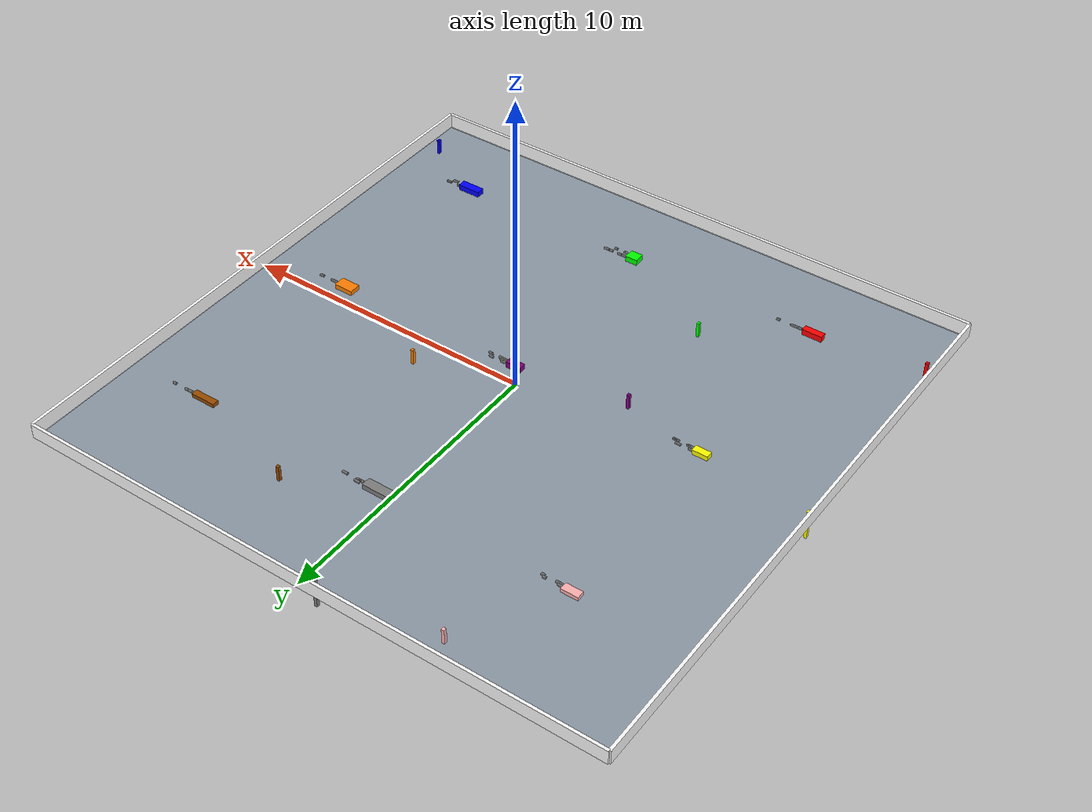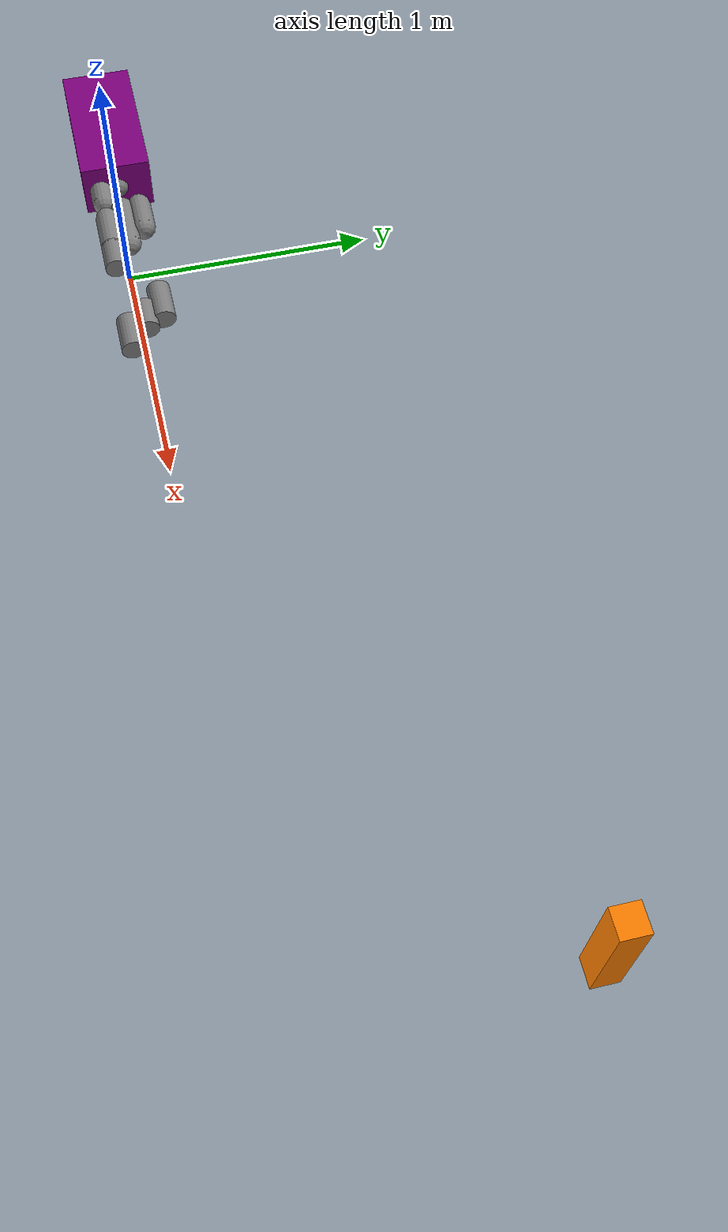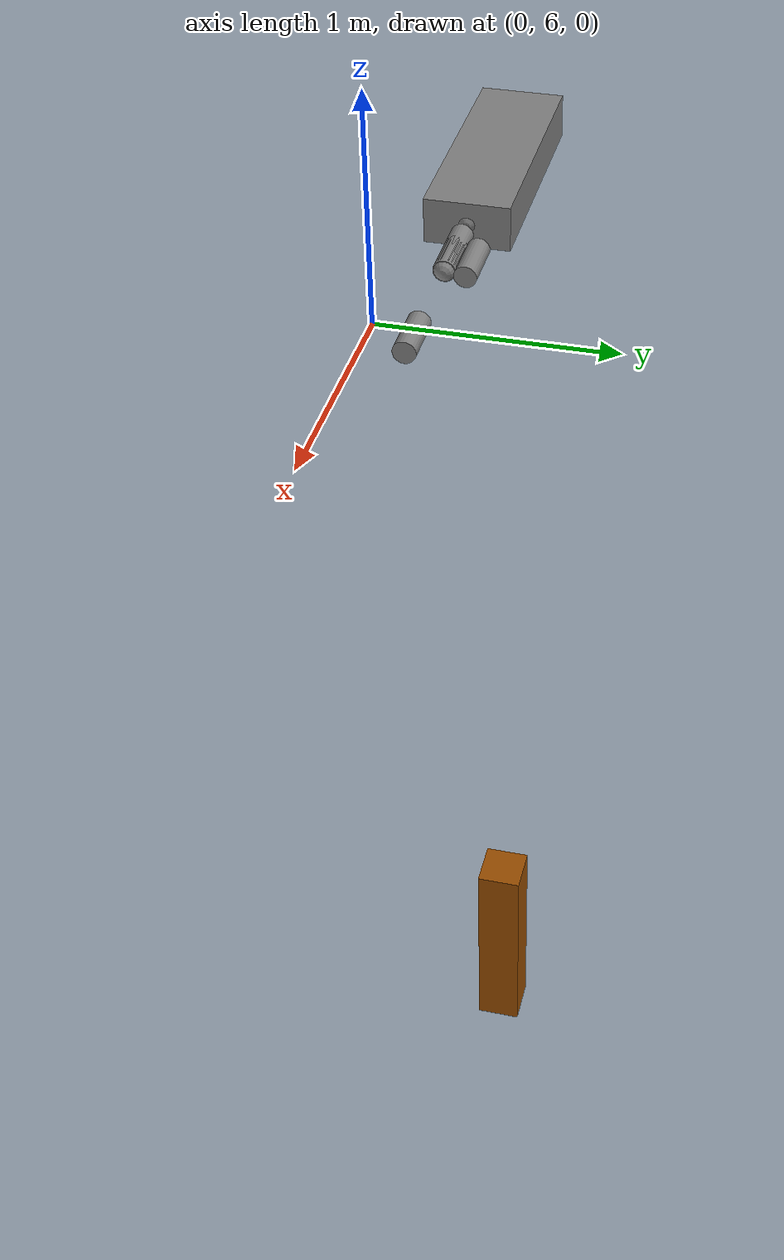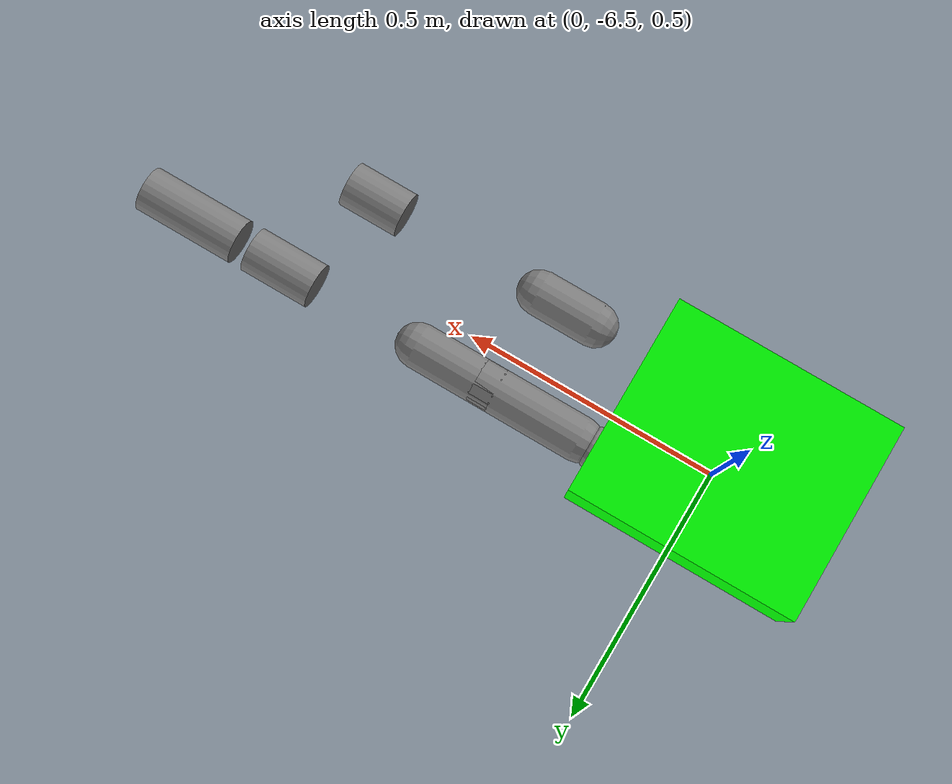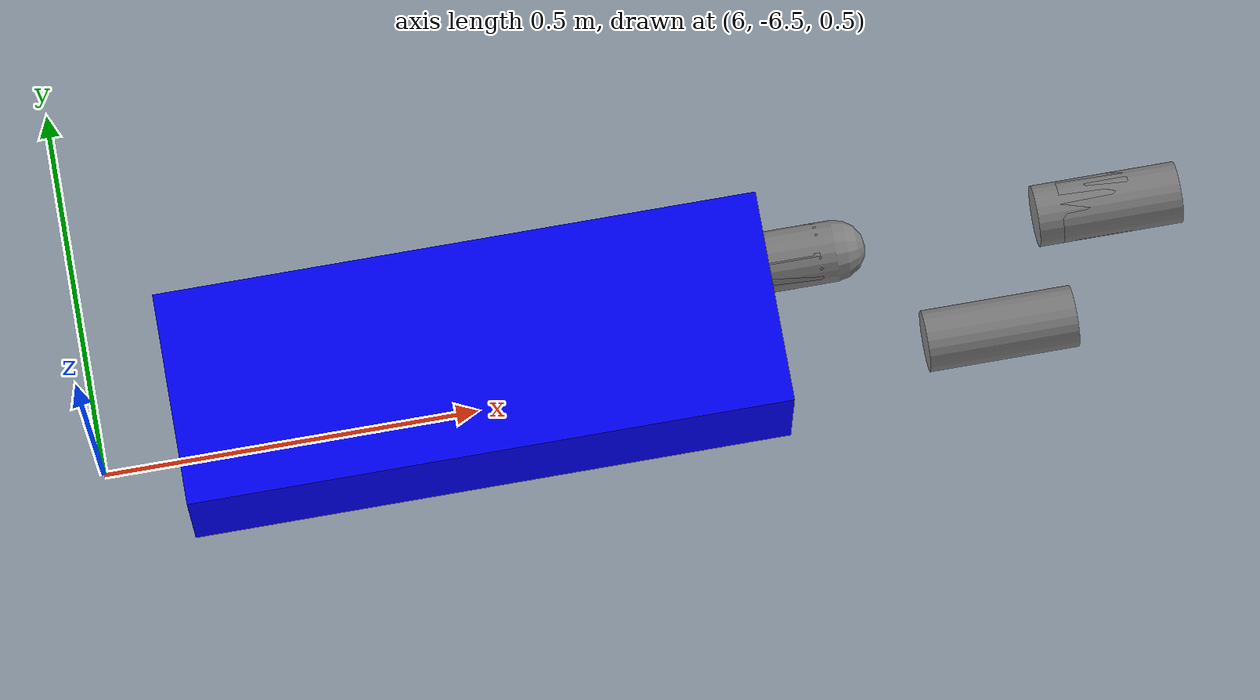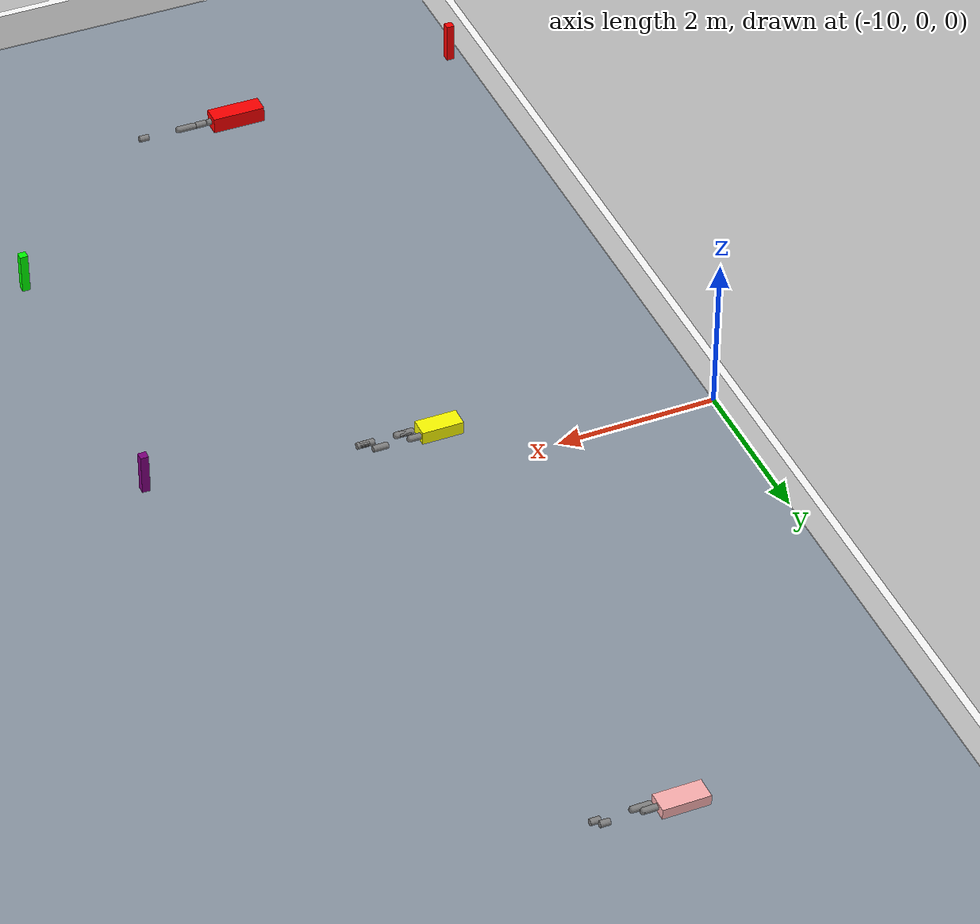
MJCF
<mujoco><option gravity="0 0 -10" timestep="0.02"/><asset><texture name="checkered" type="2d" builtin="checker" rgb1="0.2 0.3 0.4" rgb2="0.9 0.9 0.9" width="512" height="512" /><material name="MatCheckered" texture="checkered" reflectance="0.5" /><material name="MatPlane" reflectance="0.5" shininess="1" specular="1" /><material name="red" rgba="1 0 0 1" /><material name="green" rgba="0 1 0 1" /><material name="blue" rgba="0 0 1 1" /><material name="yellow" rgba="1 1 0 1" /><material name="purple" rgba="0.5 0 0.5 1" /><material name="orange" rgba="1 0.5 0 1" /><material name="pink" rgba="1 0.7 0.7 1" /><material name="grey" rgba="0.5 0.5 0.5 1" /><material name="brown" rgba="0.6 0.3 0 1" /></asset><worldbody><geom name="floor" type="plane" size="10 10 0.1" pos="0 0 0" material="MatCheckered" /><body name="torso_0" pos="-6.5 -6.5 0.75"><geom name="torso_geom_torso_0" type="box" size="0.3315451392151798 0.112427595008552 0.09891005885640927" pos="0 0 0" contype="1" conaffinity="1" material="red" /><joint name="torso_0_root" type="free" armature="0" damping="0" limited="false" /><site name="torso_0_site" pos="0 0 0" type="sphere" size="0.01" /><body name="leg_0_1" pos="-0.1657725696075899 0 0"><geom name="leg_0_1_upper_geom" type="capsule" fromto="0.0 0.0 0.0 0.10289183755689522 0.0 0.0" size="0.04" /><joint name="leg_0_1_hip_joint" type="ball" damping="2.0" /><body name="leg_0_1_lower" pos="0.10289183755689522 0.0 0.0"><geom name="leg_0_1_lower_geom" type="capsule" fromto="0.10289183755689522 0.0 0.0 0.2321589840437136 0.0 0.0" size="0.04" /><joint name="leg_0_1_knee_joint" type="hinge" axis="0 1 0" range="-90 90" damping="4.0" limited="true" /><body name="leg_0_1_foot" pos="0.2321589840437136 0.0 0.0"><geom name="leg_0_1_foot_geom" type="cylinder" fromto="0.2321589840437136 0.0 0.0 0.36663294152158676 0.0 0.0" size="0.04" /><joint name="leg_0_1_ankle_joint" type="ball" damping="6.0" /></body></body></body><body name="leg_0_2" pos="0.1657725696075899 0 0"><geom name="leg_0_2_upper_geom" type="capsule" fromto="0.0 0.0 0.0 0.19812795833847074 0.0 0.0" size="0.04" /><joint name="leg_0_2_hip_joint" type="ball" damping="2.0" /><body name="leg_0_2_lower" pos="0.19812795833847074 0.0 0.0"><geom name="leg_0_2_lower_geom" type="capsule" fromto="0.19812795833847074 0.0 0.0 0.39572479835832886 0.0 0.0" size="0.04" /><joint name="leg_0_2_knee_joint" type="hinge" axis="0 1 0" range="-90 90" damping="4.0" limited="true" /><body name="leg_0_2_foot" pos="0.39572479835832886 0.0 0.0"><geom name="leg_0_2_foot_geom" type="cylinder" fromto="0.39572479835832886 0.0 0.0 0.5160291751589269 0.0 0.0" size="0.04" /><joint name="leg_0_2_ankle_joint" type="ball" damping="6.0" /></body></body></body></body><geom name="flag_0" type="box" size="0.05 0.05 0.5" pos="-9.829122864755202 -7.580250411415851 0" material="red" contype="1" conaffinity="1" /><body name="torso_1" pos="0 -6.5 0.75"><geom name="torso_geom_torso_1" type="box" size="0.2080253860116498 0.17978726400955397 0.09787747071935608" pos="0 0 0" contype="1" conaffinity="2" material="green" /><joint name="torso_1_root" type="free" armature="0" damping="0" limited="false" /><site name="torso_1_site" pos="0 0 0" type="sphere" size="0.01" /><body name="leg_1_1" pos="0 0.08989363200477699 0"><geom name="leg_1_1_upper_geom" type="capsule" fromto="0.0 0.0 0.0 0.19680894499850812 0.0 0.0" size="0.04" /><joint name="leg_1_1_hip_joint" type="ball" damping="2.0" /><body name="leg_1_1_lower" pos="0.19680894499850812 0.0 0.0"><geom name="leg_1_1_lower_geom" type="capsule" fromto="0.19680894499850812 0.0 0.0 0.34846760081445355 0.0 0.0" size="0.04" /><joint name="leg_1_1_knee_joint" type="hinge" axis="0 1 0" range="-90 90" damping="4.0" limited="true" /><body name="leg_1_1_foot" pos="0.34846760081445355 0.0 0.0"><geom name="leg_1_1_foot_geom" type="cylinder" fromto="0.34846760081445355 0.0 0.0 0.5296614239935011 0.0 0.0" size="0.04" /><joint name="leg_1_1_ankle_joint" type="ball" damping="6.0" /></body></body></body><body name="leg_1_2" pos="0 -0.08989363200477699 0"><geom name="leg_1_2_upper_geom" type="capsule" fromto="0.0 0.0 0.0 0.15402143687297706 0.0 0.0" size="0.04" /><joint name="leg_1_2_hip_joint" type="ball" damping="2.0" /><body name="leg_1_2_lower" pos="0.15402143687297706 0.0 0.0"><geom name="leg_1_2_lower_geom" type="capsule" fromto="0.15402143687297706 0.0 0.0 0.26104984357598243 0.0 0.0" size="0.04" /><joint name="leg_1_2_knee_joint" type="hinge" axis="0 1 0" range="-90 90" damping="4.0" limited="true" /><body name="leg_1_2_foot" pos="0.26104984357598243 0.0 0.0"><geom name="leg_1_2_foot_geom" type="cylinder" fromto="0.26104984357598243 0.0 0.0 0.3689440293596725 0.0 0.0" size="0.04" /><joint name="leg_1_2_ankle_joint" type="ball" damping="6.0" /></body></body></body><body name="leg_1_3" pos="0 0.08989363200477699 0"><geom name="leg_1_3_upper_geom" type="capsule" fromto="0.0 0.0 0.0 0.1167947370412834 0.0 0.0" size="0.04" /><joint name="leg_1_3_hip_joint" type="ball" damping="2.0" /><body name="leg_1_3_lower" pos="0.1167947370412834 0.0 0.0"><geom name="leg_1_3_lower_geom" type="capsule" fromto="0.1167947370412834 0.0 0.0 0.31341941225367875 0.0 0.0" size="0.04" /><joint name="leg_1_3_knee_joint" type="hinge" axis="0 1 0" range="-90 90" damping="4.0" limited="true" /><body name="leg_1_3_foot" pos="0.31341941225367875 0.0 0.0"><geom name="leg_1_3_foot_geom" type="cylinder" fromto="0.31341941225367875 0.0 0.0 0.4383915247740926 0.0 0.0" size="0.04" /><joint name="leg_1_3_ankle_joint" type="ball" damping="6.0" /></body></body></body></body><geom name="flag_1" type="box" size="0.05 0.05 0.5" pos="-3.2432511693373502 -5.184202959194728 0" material="green" contype="1" conaffinity="2" /><body name="torso_2" pos="6.5 -6.5 0.75"><geom name="torso_geom_torso_2" type="box" size="0.3912732995869561 0.13930400637392873 0.09725094058869525" pos="0 0 0" contype="1" conaffinity="3" material="blue" /><joint name="torso_2_root" type="free" armature="0" damping="0" limited="false" /><site name="torso_2_site" pos="0 0 0" type="sphere" size="0.01" /><body name="leg_2_1" pos="0 0.06965200318696436 0"><geom name="leg_2_1_upper_geom" type="capsule" fromto="0.0 0.0 0.0 0.18852216835820582 0.0 0.0" size="0.04" /><joint name="leg_2_1_hip_joint" type="ball" damping="2.0" /><body name="leg_2_1_lower" pos="0.18852216835820582 0.0 0.0"><geom name="leg_2_1_lower_geom" type="capsule" fromto="0.18852216835820582 0.0 0.0 0.29578538610935773 0.0 0.0" size="0.04" /><joint name="leg_2_1_knee_joint" type="hinge" axis="0 1 0" range="-90 90" damping="4.0" limited="true" /><body name="leg_2_1_foot" pos="0.29578538610935773 0.0 0.0"><geom name="leg_2_1_foot_geom" type="cylinder" fromto="0.29578538610935773 0.0 0.0 0.4523777617762075 0.0 0.0" size="0.04" /><joint name="leg_2_1_ankle_joint" type="ball" damping="6.0" /></body></body></body><body name="leg_2_2" pos="0 -0.06965200318696436 0"><geom name="leg_2_2_upper_geom" type="capsule" fromto="0.0 0.0 0.0 0.1028696512823418 0.0 0.0" size="0.04" /><joint name="leg_2_2_hip_joint" type="ball" damping="2.0" /><body name="leg_2_2_lower" pos="0.1028696512823418 0.0 0.0"><geom name="leg_2_2_lower_geom" type="capsule" fromto="0.1028696512823418 0.0 0.0 0.23731924615119096 0.0 0.0" size="0.04" /><joint name="leg_2_2_knee_joint" type="hinge" axis="0 1 0" range="-90 90" damping="4.0" limited="true" /><body name="leg_2_2_foot" pos="0.23731924615119096 0.0 0.0"><geom name="leg_2_2_foot_geom" type="cylinder" fromto="0.23731924615119096 0.0 0.0 0.43264226846085163 0.0 0.0" size="0.04" /><joint name="leg_2_2_ankle_joint" type="ball" damping="6.0" /></body></body></body><body name="leg_2_3" pos="0 0.06965200318696436 0"><geom name="leg_2_3_upper_geom" type="capsule" fromto="0.0 0.0 0.0 0.17622753016303805 0.0 0.0" size="0.04" /><joint name="leg_2_3_hip_joint" type="ball" damping="2.0" /><body name="leg_2_3_lower" pos="0.17622753016303805 0.0 0.0"><geom name="leg_2_3_lower_geom" type="capsule" fromto="0.17622753016303805 0.0 0.0 0.2860738131580589 0.0 0.0" size="0.04" /><joint name="leg_2_3_knee_joint" type="hinge" axis="0 1 0" range="-90 90" damping="4.0" limited="true" /><body name="leg_2_3_foot" pos="0.2860738131580589 0.0 0.0"><geom name="leg_2_3_foot_geom" type="cylinder" fromto="0.2860738131580589 0.0 0.0 0.4097108421116664 0.0 0.0" size="0.04" /><joint name="leg_2_3_ankle_joint" type="ball" damping="6.0" /></body></body></body></body><geom name="flag_2" type="box" size="0.05 0.05 0.5" pos="9.383693260528094 -8.48351031738805 0" material="blue" contype="1" conaffinity="3" /><body name="torso_3" pos="-6.5 0 0.75"><geom name="torso_geom_torso_3" type="box" size="0.2544184793394433 0.11772421784333945 0.08081270812203979" pos="0 0 0" contype="1" conaffinity="4" material="yellow" /><joint name="torso_3_root" type="free" armature="0" damping="0" limited="false" /><site name="torso_3_site" pos="0 0 0" type="sphere" size="0.01" /><body name="leg_3_1" pos="0 -0.05886210892166972 0"><geom name="leg_3_1_upper_geom" type="capsule" fromto="0.0 0.0 0.0 0.16084095907861784 0.0 0.0" size="0.04" /><joint name="leg_3_1_hip_joint" type="ball" damping="2.0" /><body name="leg_3_1_lower" pos="0.16084095907861784 0.0 0.0"><geom name="leg_3_1_lower_geom" type="capsule" fromto="0.16084095907861784 0.0 0.0 0.31008997098026414 0.0 0.0" size="0.04" /><joint name="leg_3_1_knee_joint" type="hinge" axis="0 1 0" range="-90 90" damping="4.0" limited="true" /><body name="leg_3_1_foot" pos="0.31008997098026414 0.0 0.0"><geom name="leg_3_1_foot_geom" type="cylinder" fromto="0.31008997098026414 0.0 0.0 0.4890076009005362 0.0 0.0" size="0.04" /><joint name="leg_3_1_ankle_joint" type="ball" damping="6.0" /></body></body></body><body name="leg_3_2" pos="0 0.05886210892166972 0"><geom name="leg_3_2_upper_geom" type="capsule" fromto="0.0 0.0 0.0 0.10704286697957988 0.0 0.0" size="0.04" /><joint name="leg_3_2_hip_joint" type="ball" damping="2.0" /><body name="leg_3_2_lower" pos="0.10704286697957988 0.0 0.0"><geom name="leg_3_2_lower_geom" type="capsule" fromto="0.10704286697957988 0.0 0.0 0.2762859234727064 0.0 0.0" size="0.04" /><joint name="leg_3_2_knee_joint" type="hinge" axis="0 1 0" range="-90 90" damping="4.0" limited="true" /><body name="leg_3_2_foot" pos="0.2762859234727064 0.0 0.0"><geom name="leg_3_2_foot_geom" type="cylinder" fromto="0.2762859234727064 0.0 0.0 0.45856322275536965 0.0 0.0" size="0.04" /><joint name="leg_3_2_ankle_joint" type="ball" damping="6.0" /></body></body></body><body name="leg_3_3" pos="0 -0.05886210892166972 0"><geom name="leg_3_3_upper_geom" type="capsule" fromto="0.0 0.0 0.0 0.16675631754566378 0.0 0.0" size="0.04" /><joint name="leg_3_3_hip_joint" type="ball" damping="2.0" /><body name="leg_3_3_lower" pos="0.16675631754566378 0.0 0.0"><geom name="leg_3_3_lower_geom" type="capsule" fromto="0.16675631754566378 0.0 0.0 0.33982399931786206 0.0 0.0" size="0.04" /><joint name="leg_3_3_knee_joint" type="hinge" axis="0 1 0" range="-90 90" damping="4.0" limited="true" /><body name="leg_3_3_foot" pos="0.33982399931786206 0.0 0.0"><geom name="leg_3_3_foot_geom" type="cylinder" fromto="0.33982399931786206 0.0 0.0 0.4872843311649927 0.0 0.0" size="0.04" /><joint name="leg_3_3_ankle_joint" type="ball" damping="6.0" /></body></body></body></body><geom name="flag_3" type="box" size="0.05 0.05 0.5" pos="-9.999815351599246 0.03595142153308704 0" material="yellow" contype="1" conaffinity="4" /><body name="torso_4" pos="0 0 0.75"><geom name="torso_geom_torso_4" type="box" size="0.251918220768919 0.12258958378194335 0.09941292635472343" pos="0 0 0" contype="1" conaffinity="5" material="purple" /><joint name="torso_4_root" type="free" armature="0" damping="0" limited="false" /><site name="torso_4_site" pos="0 0 0" type="sphere" size="0.01" /><body name="leg_4_1" pos="0 -0.06129479189097167 0"><geom name="leg_4_1_upper_geom" type="capsule" fromto="0.0 0.0 0.0 0.11010032900565211 0.0 0.0" size="0.04" /><joint name="leg_4_1_hip_joint" type="ball" damping="2.0" /><body name="leg_4_1_lower" pos="0.11010032900565211 0.0 0.0"><geom name="leg_4_1_lower_geom" type="capsule" fromto="0.11010032900565211 0.0 0.0 0.21234838931050193 0.0 0.0" size="0.04" /><joint name="leg_4_1_knee_joint" type="hinge" axis="0 1 0" range="-90 90" damping="4.0" limited="true" /><body name="leg_4_1_foot" pos="0.21234838931050193 0.0 0.0"><geom name="leg_4_1_foot_geom" type="cylinder" fromto="0.21234838931050193 0.0 0.0 0.3204241328479647 0.0 0.0" size="0.04" /><joint name="leg_4_1_ankle_joint" type="ball" damping="6.0" /></body></body></body><body name="leg_4_2" pos="0 -0.06129479189097167 0"><geom name="leg_4_2_upper_geom" type="capsule" fromto="0.0 0.0 0.0 0.1994684050866581 0.0 0.0" size="0.04" /><joint name="leg_4_2_hip_joint" type="ball" damping="2.0" /><body name="leg_4_2_lower" pos="0.1994684050866581 0.0 0.0"><geom name="leg_4_2_lower_geom" type="capsule" fromto="0.1994684050866581 0.0 0.0 0.3419731317089022 0.0 0.0" size="0.04" /><joint name="leg_4_2_knee_joint" type="hinge" axis="0 1 0" range="-90 90" damping="4.0" limited="true" /><body name="leg_4_2_foot" pos="0.3419731317089022 0.0 0.0"><geom name="leg_4_2_foot_geom" type="cylinder" fromto="0.3419731317089022 0.0 0.0 0.47647179597251577 0.0 0.0" size="0.04" /><joint name="leg_4_2_ankle_joint" type="ball" damping="6.0" /></body></body></body><body name="leg_4_3" pos="0.1259591103844595 0 0"><geom name="leg_4_3_upper_geom" type="capsule" fromto="0.0 0.0 0.0 0.11766548489061975 0.0 0.0" size="0.04" /><joint name="leg_4_3_hip_joint" type="ball" damping="2.0" /><body name="leg_4_3_lower" pos="0.11766548489061975 0.0 0.0"><geom name="leg_4_3_lower_geom" type="capsule" fromto="0.11766548489061975 0.0 0.0 0.29417662911218634 0.0 0.0" size="0.04" /><joint name="leg_4_3_knee_joint" type="hinge" axis="0 1 0" range="-90 90" damping="4.0" limited="true" /><body name="leg_4_3_foot" pos="0.29417662911218634 0.0 0.0"><geom name="leg_4_3_foot_geom" type="cylinder" fromto="0.29417662911218634 0.0 0.0 0.4024393924541306 0.0 0.0" size="0.04" /><joint name="leg_4_3_ankle_joint" type="ball" damping="6.0" /></body></body></body><body name="leg_4_4" pos="0 0.06129479189097167 0"><geom name="leg_4_4_upper_geom" type="capsule" fromto="0.0 0.0 0.0 0.17862364451930218 0.0 0.0" size="0.04" /><joint name="leg_4_4_hip_joint" type="ball" damping="2.0" /><body name="leg_4_4_lower" pos="0.17862364451930218 0.0 0.0"><geom name="leg_4_4_lower_geom" type="capsule" fromto="0.17862364451930218 0.0 0.0 0.2926272831329448 0.0 0.0" size="0.04" /><joint name="leg_4_4_knee_joint" type="hinge" axis="0 1 0" range="-90 90" damping="4.0" limited="true" /><body name="leg_4_4_foot" pos="0.2926272831329448 0.0 0.0"><geom name="leg_4_4_foot_geom" type="cylinder" fromto="0.2926272831329448 0.0 0.0 0.4373555931873686 0.0 0.0" size="0.04" /><joint name="leg_4_4_ankle_joint" type="ball" damping="6.0" /></body></body></body></body><geom name="flag_4" type="box" size="0.05 0.05 0.5" pos="-3.3102884223667757 -1.1366576268800046 0" material="purple" contype="1" conaffinity="5" /><body name="torso_5" pos="6.5 0 0.75"><geom name="torso_geom_torso_5" type="box" size="0.32365727238942166 0.19592502692434166 0.08169301789660743" pos="0 0 0" contype="1" conaffinity="6" material="orange" /><joint name="torso_5_root" type="free" armature="0" damping="0" limited="false" /><site name="torso_5_site" pos="0 0 0" type="sphere" size="0.01" /><body name="leg_5_1" pos="0.16182863619471083 0 0"><geom name="leg_5_1_upper_geom" type="capsule" fromto="0.0 0.0 0.0 0.13087748791969914 0.0 0.0" size="0.04" /><joint name="leg_5_1_hip_joint" type="ball" damping="2.0" /><body name="leg_5_1_lower" pos="0.13087748791969914 0.0 0.0"><geom name="leg_5_1_lower_geom" type="capsule" fromto="0.13087748791969914 0.0 0.0 0.3194149201865224 0.0 0.0" size="0.04" /><joint name="leg_5_1_knee_joint" type="hinge" axis="0 1 0" range="-90 90" damping="4.0" limited="true" /><body name="leg_5_1_foot" pos="0.3194149201865224 0.0 0.0"><geom name="leg_5_1_foot_geom" type="cylinder" fromto="0.3194149201865224 0.0 0.0 0.4717330443807416 0.0 0.0" size="0.04" /><joint name="leg_5_1_ankle_joint" type="ball" damping="6.0" /></body></body></body></body><geom name="flag_5" type="box" size="0.05 0.05 0.5" pos="3.138512451079431 0.9748853565686515 0" material="orange" contype="1" conaffinity="6" /><body name="torso_6" pos="-6.5 6.5 0.75"><geom name="torso_geom_torso_6" type="box" size="0.2824796164340885 0.13061334355481422 0.06425468277419732" pos="0 0 0" contype="1" conaffinity="7" material="pink" /><joint name="torso_6_root" type="free" armature="0" damping="0" limited="false" /><site name="torso_6_site" pos="0 0 0" type="sphere" size="0.01" /><body name="leg_6_1" pos="0 -0.06530667177740711 0"><geom name="leg_6_1_upper_geom" type="capsule" fromto="0.0 0.0 0.0 0.17209529997534292 0.0 0.0" size="0.04" /><joint name="leg_6_1_hip_joint" type="ball" damping="2.0" /><body name="leg_6_1_lower" pos="0.17209529997534292 0.0 0.0"><geom name="leg_6_1_lower_geom" type="capsule" fromto="0.17209529997534292 0.0 0.0 0.36597975781652803 0.0 0.0" size="0.04" /><joint name="leg_6_1_knee_joint" type="hinge" axis="0 1 0" range="-90 90" damping="4.0" limited="true" /><body name="leg_6_1_foot" pos="0.36597975781652803 0.0 0.0"><geom name="leg_6_1_foot_geom" type="cylinder" fromto="0.36597975781652803 0.0 0.0 0.4843805310878582 0.0 0.0" size="0.04" /><joint name="leg_6_1_ankle_joint" type="ball" damping="6.0" /></body></body></body><body name="leg_6_2" pos="-0.14123980821704424 0 0"><geom name="leg_6_2_upper_geom" type="capsule" fromto="0.0 0.0 0.0 0.19704167328753416 0.0 0.0" size="0.04" /><joint name="leg_6_2_hip_joint" type="ball" damping="2.0" /><body name="leg_6_2_lower" pos="0.19704167328753416 0.0 0.0"><geom name="leg_6_2_lower_geom" type="capsule" fromto="0.19704167328753416 0.0 0.0 0.383549616995336 0.0 0.0" size="0.04" /><joint name="leg_6_2_knee_joint" type="hinge" axis="0 1 0" range="-90 90" damping="4.0" limited="true" /><body name="leg_6_2_foot" pos="0.383549616995336 0.0 0.0"><geom name="leg_6_2_foot_geom" type="cylinder" fromto="0.383549616995336 0.0 0.0 0.5000244250994783 0.0 0.0" size="0.04" /><joint name="leg_6_2_ankle_joint" type="ball" damping="6.0" /></body></body></body></body><geom name="flag_6" type="box" size="0.05 0.05 0.5" pos="-4.4107699551202 9.308045195428939 0" material="pink" contype="1" conaffinity="7" /><body name="torso_7" pos="0 6.5 0.75"><geom name="torso_geom_torso_7" type="box" size="0.45333513820564125 0.15576961188476127 0.08408604113918189" pos="0 0 0" contype="1" conaffinity="8" material="grey" /><joint name="torso_7_root" type="free" armature="0" damping="0" limited="false" /><site name="torso_7_site" pos="0 0 0" type="sphere" size="0.01" /><body name="leg_7_1" pos="0.22666756910282063 0 0"><geom name="leg_7_1_upper_geom" type="capsule" fromto="0.0 0.0 0.0 0.1996748166189401 0.0 0.0" size="0.04" /><joint name="leg_7_1_hip_joint" type="ball" damping="2.0" /><body name="leg_7_1_lower" pos="0.1996748166189401 0.0 0.0"><geom name="leg_7_1_lower_geom" type="capsule" fromto="0.1996748166189401 0.0 0.0 0.3351947541015507 0.0 0.0" size="0.04" /><joint name="leg_7_1_knee_joint" type="hinge" axis="0 1 0" range="-90 90" damping="4.0" limited="true" /><body name="leg_7_1_foot" pos="0.3351947541015507 0.0 0.0"><geom name="leg_7_1_foot_geom" type="cylinder" fromto="0.3351947541015507 0.0 0.0 0.5259321816502169 0.0 0.0" size="0.04" /><joint name="leg_7_1_ankle_joint" type="ball" damping="6.0" /></body></body></body><body name="leg_7_2" pos="-0.22666756910282063 0 0"><geom name="leg_7_2_upper_geom" type="capsule" fromto="0.0 0.0 0.0 0.11862794736412871 0.0 0.0" size="0.04" /><joint name="leg_7_2_hip_joint" type="ball" damping="2.0" /><body name="leg_7_2_lower" pos="0.11862794736412871 0.0 0.0"><geom name="leg_7_2_lower_geom" type="capsule" fromto="0.11862794736412871 0.0 0.0 0.31316505916066606 0.0 0.0" size="0.04" /><joint name="leg_7_2_knee_joint" type="hinge" axis="0 1 0" range="-90 90" damping="4.0" limited="true" /><body name="leg_7_2_foot" pos="0.31316505916066606 0.0 0.0"><geom name="leg_7_2_foot_geom" type="cylinder" fromto="0.31316505916066606 0.0 0.0 0.4965596568330549 0.0 0.0" size="0.04" /><joint name="leg_7_2_ankle_joint" type="ball" damping="6.0" /></body></body></body><body name="leg_7_3" pos="-0.22666756910282063 0 0"><geom name="leg_7_3_upper_geom" type="capsule" fromto="0.0 0.0 0.0 0.17288733351300734 0.0 0.0" size="0.04" /><joint name="leg_7_3_hip_joint" type="ball" damping="2.0" /><body name="leg_7_3_lower" pos="0.17288733351300734 0.0 0.0"><geom name="leg_7_3_lower_geom" type="capsule" fromto="0.17288733351300734 0.0 0.0 0.32739972588487953 0.0 0.0" size="0.04" /><joint name="leg_7_3_knee_joint" type="hinge" axis="0 1 0" range="-90 90" damping="4.0" limited="true" /><body name="leg_7_3_foot" pos="0.32739972588487953 0.0 0.0"><geom name="leg_7_3_foot_geom" type="cylinder" fromto="0.32739972588487953 0.0 0.0 0.5010985402115977 0.0 0.0" size="0.04" /><joint name="leg_7_3_ankle_joint" type="ball" damping="6.0" /></body></body></body><body name="leg_7_4" pos="0 0.07788480594238063 0"><geom name="leg_7_4_upper_geom" type="capsule" fromto="0.0 0.0 0.0 0.12522853315058574 0.0 0.0" size="0.04" /><joint name="leg_7_4_hip_joint" type="ball" damping="2.0" /><body name="leg_7_4_lower" pos="0.12522853315058574 0.0 0.0"><geom name="leg_7_4_lower_geom" type="capsule" fromto="0.12522853315058574 0.0 0.0 0.23752141649845568 0.0 0.0" size="0.04" /><joint name="leg_7_4_knee_joint" type="hinge" axis="0 1 0" range="-90 90" damping="4.0" limited="true" /><body name="leg_7_4_foot" pos="0.23752141649845568 0.0 0.0"><geom name="leg_7_4_foot_geom" type="cylinder" fromto="0.23752141649845568 0.0 0.0 0.43361392232786466 0.0 0.0" size="0.04" /><joint name="leg_7_4_ankle_joint" type="ball" damping="6.0" /></body></body></body></body><geom name="flag_7" type="box" size="0.05 0.05 0.5" pos="-0.5886572938236538 9.95014240147102 0" material="grey" contype="1" conaffinity="8" /><body name="torso_8" pos="6.5 6.5 0.75"><geom name="torso_geom_torso_8" type="box" size="0.4177519042212109 0.10640549632730112 0.06707896464128467" pos="0 0 0" contype="1" conaffinity="9" material="brown" /><joint name="torso_8_root" type="free" armature="0" damping="0" limited="false" /><site name="torso_8_site" pos="0 0 0" type="sphere" size="0.01" /><body name="leg_8_1" pos="-0.20887595211060545 0 0"><geom name="leg_8_1_upper_geom" type="capsule" fromto="0.0 0.0 0.0 0.14452743409470267 0.0 0.0" size="0.04" /><joint name="leg_8_1_hip_joint" type="ball" damping="2.0" /><body name="leg_8_1_lower" pos="0.14452743409470267 0.0 0.0"><geom name="leg_8_1_lower_geom" type="capsule" fromto="0.14452743409470267 0.0 0.0 0.28707663682026185 0.0 0.0" size="0.04" /><joint name="leg_8_1_knee_joint" type="hinge" axis="0 1 0" range="-90 90" damping="4.0" limited="true" /><body name="leg_8_1_foot" pos="0.28707663682026185 0.0 0.0"><geom name="leg_8_1_foot_geom" type="cylinder" fromto="0.28707663682026185 0.0 0.0 0.4408090853639206 0.0 0.0" size="0.04" /><joint name="leg_8_1_ankle_joint" type="ball" damping="6.0" /></body></body></body><body name="leg_8_2" pos="0.20887595211060545 0 0"><geom name="leg_8_2_upper_geom" type="capsule" fromto="0.0 0.0 0.0 0.19555396251796367 0.0 0.0" size="0.04" /><joint name="leg_8_2_hip_joint" type="ball" damping="2.0" /><body name="leg_8_2_lower" pos="0.19555396251796367 0.0 0.0"><geom name="leg_8_2_lower_geom" type="capsule" fromto="0.19555396251796367 0.0 0.0 0.368056866085376 0.0 0.0" size="0.04" /><joint name="leg_8_2_knee_joint" type="hinge" axis="0 1 0" range="-90 90" damping="4.0" limited="true" /><body name="leg_8_2_foot" pos="0.368056866085376 0.0 0.0"><geom name="leg_8_2_foot_geom" type="cylinder" fromto="0.368056866085376 0.0 0.0 0.48737602244845424 0.0 0.0" size="0.04" /><joint name="leg_8_2_ankle_joint" type="ball" damping="6.0" /></body></body></body></body><geom name="flag_8" type="box" size="0.05 0.05 0.5" pos="3.076414191584454 7.227365253786342 0" material="brown" contype="1" conaffinity="9" /><geom name="north_wall" type="box" pos="0 10.05 0.25" size="10.05 0.05 0.25" material="MatPlane" /><geom name="south_wall" type="box" pos="0 -10.05 0.25" size="10.05 0.05 0.25" material="MatPlane" /><geom name="east_wall" type="box" pos="10.05 0 0.25" size="0.05 10.05 0.25" material="MatPlane" /><geom name="west_wall" type="box" pos="-10.05 0 0.25" size="0.05 10.05 0.25" material="MatPlane" /></worldbody><actuator><motor name="leg_0_1_hip_motor" joint="leg_0_1_hip_joint" ctrllimited="true" ctrlrange="-1 1" gear="200" /><motor name="leg_0_1_ankle_joint_motor" joint="leg_0_1_ankle_joint" ctrllimited="true" ctrlrange="-1 1" gear="200" /><motor name="leg_0_2_hip_motor" joint="leg_0_2_hip_joint" ctrllimited="true" ctrlrange="-1 1" gear="200" /><motor name="leg_0_2_ankle_joint_motor" joint="leg_0_2_ankle_joint" ctrllimited="true" ctrlrange="-1 1" gear="200" /><motor name="leg_1_1_hip_motor" joint="leg_1_1_hip_joint" ctrllimited="true" ctrlrange="-1 1" gear="200" /><motor name="leg_1_1_ankle_joint_motor" joint="leg_1_1_ankle_joint" ctrllimited="true" ctrlrange="-1 1" gear="200" /><motor name="leg_1_2_hip_motor" joint="leg_1_2_hip_joint" ctrllimited="true" ctrlrange="-1 1" gear="200" /><motor name="leg_1_2_ankle_joint_motor" joint="leg_1_2_ankle_joint" ctrllimited="true" ctrlrange="-1 1" gear="200" /><motor name="leg_1_3_hip_motor" joint="leg_1_3_hip_joint" ctrllimited="true" ctrlrange="-1 1" gear="200" /><motor name="leg_1_3_ankle_joint_motor" joint="leg_1_3_ankle_joint" ctrllimited="true" ctrlrange="-1 1" gear="200" /><motor name="leg_2_1_hip_motor" joint="leg_2_1_hip_joint" ctrllimited="true" ctrlrange="-1 1" gear="200" /><motor name="leg_2_1_ankle_joint_motor" joint="leg_2_1_ankle_joint" ctrllimited="true" ctrlrange="-1 1" gear="200" /><motor name="leg_2_2_hip_motor" joint="leg_2_2_hip_joint" ctrllimited="true" ctrlrange="-1 1" gear="200" /><motor name="leg_2_2_ankle_joint_motor" joint="leg_2_2_ankle_joint" ctrllimited="true" ctrlrange="-1 1" gear="200" /><motor name="leg_2_3_hip_motor" joint="leg_2_3_hip_joint" ctrllimited="true" ctrlrange="-1 1" gear="200" /><motor name="leg_2_3_ankle_joint_motor" joint="leg_2_3_ankle_joint" ctrllimited="true" ctrlrange="-1 1" gear="200" /><motor name="leg_3_1_hip_motor" joint="leg_3_1_hip_joint" ctrllimited="true" ctrlrange="-1 1" gear="200" /><motor name="leg_3_1_ankle_joint_motor" joint="leg_3_1_ankle_joint" ctrllimited="true" ctrlrange="-1 1" gear="200" /><motor name="leg_3_2_hip_motor" joint="leg_3_2_hip_joint" ctrllimited="true" ctrlrange="-1 1" gear="200" /><motor name="leg_3_2_ankle_joint_motor" joint="leg_3_2_ankle_joint" ctrllimited="true" ctrlrange="-1 1" gear="200" /><motor name="leg_3_3_hip_motor" joint="leg_3_3_hip_joint" ctrllimited="true" ctrlrange="-1 1" gear="200" /><motor name="leg_3_3_ankle_joint_motor" joint="leg_3_3_ankle_joint" ctrllimited="true" ctrlrange="-1 1" gear="200" /><motor name="leg_4_1_hip_motor" joint="leg_4_1_hip_joint" ctrllimited="true" ctrlrange="-1 1" gear="200" /><motor name="leg_4_1_ankle_joint_motor" joint="leg_4_1_ankle_joint" ctrllimited="true" ctrlrange="-1 1" gear="200" /><motor name="leg_4_2_hip_motor" joint="leg_4_2_hip_joint" ctrllimited="true" ctrlrange="-1 1" gear="200" /><motor name="leg_4_2_ankle_joint_motor" joint="leg_4_2_ankle_joint" ctrllimited="true" ctrlrange="-1 1" gear="200" /><motor name="leg_4_3_hip_motor" joint="leg_4_3_hip_joint" ctrllimited="true" ctrlrange="-1 1" gear="200" /><motor name="leg_4_3_ankle_joint_motor" joint="leg_4_3_ankle_joint" ctrllimited="true" ctrlrange="-1 1" gear="200" /><motor name="leg_4_4_hip_motor" joint="leg_4_4_hip_joint" ctrllimited="true" ctrlrange="-1 1" gear="200" /><motor name="leg_4_4_ankle_joint_motor" joint="leg_4_4_ankle_joint" ctrllimited="true" ctrlrange="-1 1" gear="200" /><motor name="leg_5_1_hip_motor" joint="leg_5_1_hip_joint" ctrllimited="true" ctrlrange="-1 1" gear="200" /><motor name="leg_5_1_ankle_joint_motor" joint="leg_5_1_ankle_joint" ctrllimited="true" ctrlrange="-1 1" gear="200" /><motor name="leg_6_1_hip_motor" joint="leg_6_1_hip_joint" ctrllimited="true" ctrlrange="-1 1" gear="200" /><motor name="leg_6_1_ankle_joint_motor" joint="leg_6_1_ankle_joint" ctrllimited="true" ctrlrange="-1 1" gear="200" /><motor name="leg_6_2_hip_motor" joint="leg_6_2_hip_joint" ctrllimited="true" ctrlrange="-1 1" gear="200" /><motor name="leg_6_2_ankle_joint_motor" joint="leg_6_2_ankle_joint" ctrllimited="true" ctrlrange="-1 1" gear="200" /><motor name="leg_7_1_hip_motor" joint="leg_7_1_hip_joint" ctrllimited="true" ctrlrange="-1 1" gear="200" /><motor name="leg_7_1_ankle_joint_motor" joint="leg_7_1_ankle_joint" ctrllimited="true" ctrlrange="-1 1" gear="200" /><motor name="leg_7_2_hip_motor" joint="leg_7_2_hip_joint" ctrllimited="true" ctrlrange="-1 1" gear="200" /><motor name="leg_7_2_ankle_joint_motor" joint="leg_7_2_ankle_joint" ctrllimited="true" ctrlrange="-1 1" gear="200" /><motor name="leg_7_3_hip_motor" joint="leg_7_3_hip_joint" ctrllimited="true" ctrlrange="-1 1" gear="200" /><motor name="leg_7_3_ankle_joint_motor" joint="leg_7_3_ankle_joint" ctrllimited="true" ctrlrange="-1 1" gear="200" /><motor name="leg_7_4_hip_motor" joint="leg_7_4_hip_joint" ctrllimited="true" ctrlrange="-1 1" gear="200" /><motor name="leg_7_4_ankle_joint_motor" joint="leg_7_4_ankle_joint" ctrllimited="true" ctrlrange="-1 1" gear="200" /><motor name="leg_8_1_hip_motor" joint="leg_8_1_hip_joint" ctrllimited="true" ctrlrange="-1 1" gear="200" /><motor name="leg_8_1_ankle_joint_motor" joint="leg_8_1_ankle_joint" ctrllimited="true" ctrlrange="-1 1" gear="200" /><motor name="leg_8_2_hip_motor" joint="leg_8_2_hip_joint" ctrllimited="true" ctrlrange="-1 1" gear="200" /><motor name="leg_8_2_ankle_joint_motor" joint="leg_8_2_ankle_joint" ctrllimited="true" ctrlrange="-1 1" gear="200" /></actuator><sensor><accelerometer name="torso_0_accel" site="torso_0_site" /><gyro name="torso_0_gyro" site="torso_0_site" /><accelerometer name="torso_1_accel" site="torso_1_site" /><gyro name="torso_1_gyro" site="torso_1_site" /><accelerometer name="torso_2_accel" site="torso_2_site" /><gyro name="torso_2_gyro" site="torso_2_site" /><accelerometer name="torso_3_accel" site="torso_3_site" /><gyro name="torso_3_gyro" site="torso_3_site" /><accelerometer name="torso_4_accel" site="torso_4_site" /><gyro name="torso_4_gyro" site="torso_4_site" /><accelerometer name="torso_5_accel" site="torso_5_site" /><gyro name="torso_5_gyro" site="torso_5_site" /><accelerometer name="torso_6_accel" site="torso_6_site" /><gyro name="torso_6_gyro" site="torso_6_site" /><accelerometer name="torso_7_accel" site="torso_7_site" /><gyro name="torso_7_gyro" site="torso_7_site" /><accelerometer name="torso_8_accel" site="torso_8_site" /><gyro name="torso_8_gyro" site="torso_8_site" /></sensor></mujoco>
